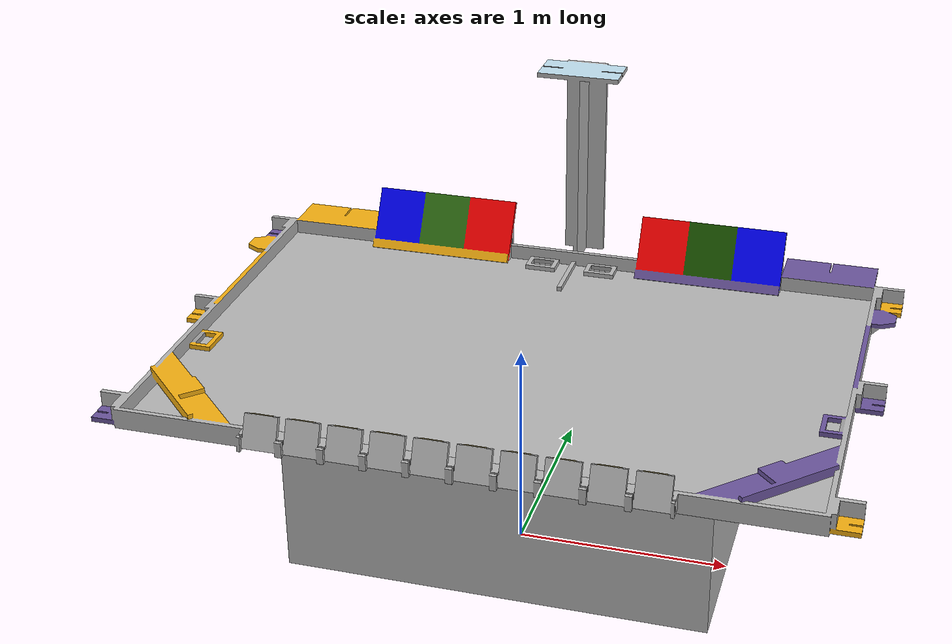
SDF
<?xml version='1.0'?>
<sdf version="1.4">
  <model name="eurobot_arena_2022">
    <pose>0 0 0 0 0 0</pose>
    <static>false</static>

    <link name="table">
      <inertial>
        <mass>30</mass>
        <inertia>
          <ixx>4.55</ixx>
          <ixy>0.0</ixy>
          <ixz>0.0</ixz>
          <iyy>4.55</iyy>
          <iyz>0.0</iyz>
          <izz>4.55</izz>
        </inertia>
      </inertial>

      <collision name="table_collision">
        <pose>0 0 0.989 0 0 0</pose>
        <geometry>
          <box>
            <size>3 2 0.022</size>
          </box>
        </geometry>
        <surface>
          <friction>
            <ode>
              <mu>100</mu>
              <mu2>50</mu2>
            </ode>
          </friction>
          <bounce/>
          <contact>
            <ode/>
          </contact>
        </surface>
      </collision>
      <visual name="table_visual">
        <pose>-1.5 1 0.978 0 0 0</pose>
        <geometry>
          <mesh>
            <uri>model://eurobot_arena_2022/meshes/eurobot_arena_2022.dae</uri>
            <scale>1 1 1 </scale>
          </mesh>
        </geometry>
      </visual>
      <visual name="vinyle_visual">
        <pose>-1.5 1 0.978 0 0 0</pose>
        <geometry>
          <mesh>
            <uri>model://eurobot_arena_2022/meshes/vinyle_2022.dae</uri>
            <scale>1 1 1 </scale>
          </mesh>
        </geometry>
      </visual>

      <collision name="table_left">
        <pose>0 -1.011 1.024 0 0 0</pose>
        <geometry>
          <box>
            <size>3 0.022 0.092</size>
          </box>
        </geometry>
      </collision>

      <collision name="table_right">
        <pose>0 1.011 1.024 0 0 0</pose>
        <geometry>
          <box>
            <size>3 0.022 0.092</size>
          </box>
        </geometry>
      </collision>

      <collision name="table_top">
        <pose>1.511 0 1.024 0 0 0</pose>
        <geometry>
          <box>
            <size>0.022 2 0.092</size>
          </box>
        </geometry>
      </collision>

      <collision name="table_bottom">
        <pose>-1.511 0 1.024 0 0 0</pose>
        <geometry>
          <box>
            <size>0.022 2 0.092</size>
          </box>
        </geometry>
      </collision>

      <collision name="table_stand_collision">
        <pose>0 0 0.489 0 0 0</pose>
        <geometry>
          <box>
            <size>2 1 0.978</size>
          </box>
        </geometry>
      </collision>

      <collision name="table_tower">
        <pose>0 1.10 1.5 0 0 0</pose>
        <geometry>
          <box>
            <size>0.40 0.20 1</size>
          </box>
        </geometry>
      </collision>

      <visual name="table_stand_visual">
        <pose>0 0 0.479 0 0 0</pose>
        <geometry>
          <box>
            <size>2 1 0.978</size>
          </box>
        </geometry>
      </visual>

      <collision name="taquet_middle_2022">
        <pose>0 0.850 1.011 0 0 0</pose>
        <geometry>
          <box>
            <size>0.022 0.3 0.022</size>
          </box>
        </geometry>
      </collision>

      <collision name="frise_yellow_2022">
        <pose>-0.690 0.915 1.011 0 0 0</pose>
        <geometry>
          <box>
            <size>0.72 0.022 0.022</size>
          </box>
        </geometry>
      </collision>

      <collision name="frise_purple_2022">
        <pose>0.690 0.915 1.011 0 0 0</pose>
        <geometry>
          <box>
            <size>0.72 0.022 0.022</size>
          </box>
        </geometry>
      </collision>

      <collision name="support_purple_2022">
        <pose>1.287 -0.787 1.059 0 0 0.785</pose>
        <geometry>
          <box>
            <size>0.721 0.120 0.022</size>
          </box>
        </geometry>
      </collision>

      <collision name="support_yellow_2022">
        <pose>-1.287 -0.787 1.059 0 0 -0.785</pose>
        <geometry>
          <box>
            <size>0.721 0.120 0.022</size>
          </box>
        </geometry>
      </collision>

    </link>
  </model>
</sdf>
